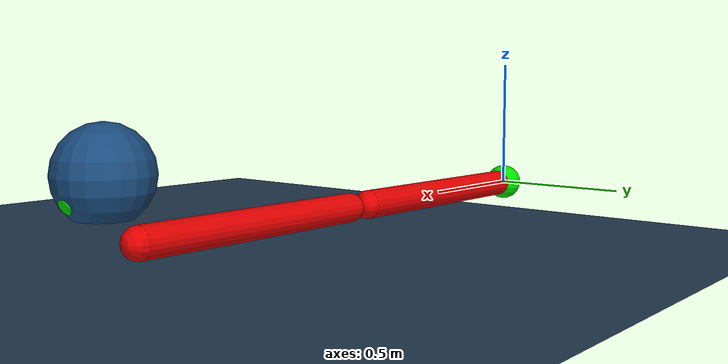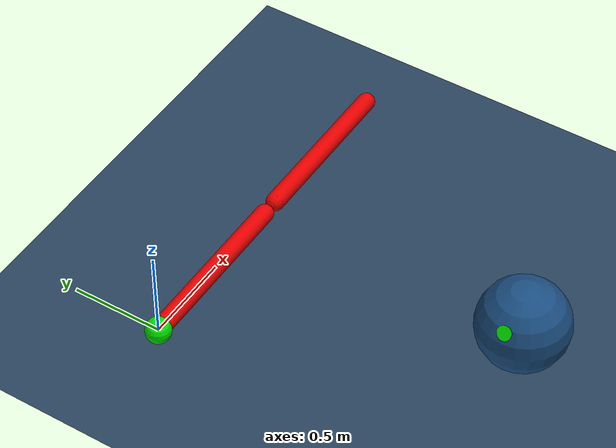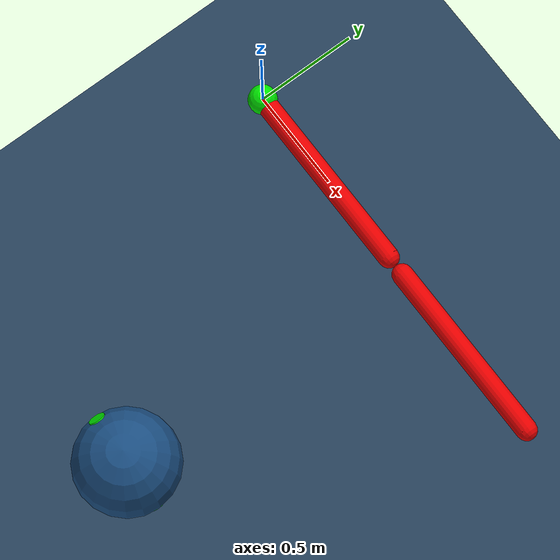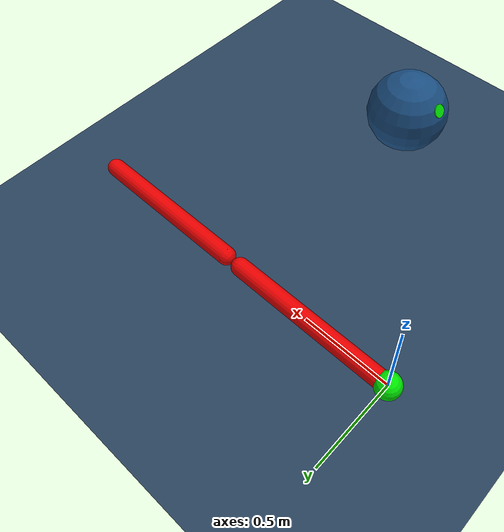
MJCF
<mujoco model="spinner">
  <compiler angle="radian"/>

  <default>
    <default class="visual">
      <geom contype="0" conaffinity="0"/>
    </default>
  </default>

  <!-- Converted from URDF -->
  <worldbody>
    <body name="base">
      <geom class="visual" type="sphere" size="0.07" rgba="0 0.9 0 1"/>
      <body name="finger_one" quat="0.7 0.0 0.7 0.0">
        <inertial pos="0 0 0.5" mass="1" diaginertia="0.0839 0.0839 0.00125"/>
        <joint name="theta_one" pos="0 0 0" axis="1 0 0" damping="0.1"/>
        <geom class="visual" pos="0 0 0.5" type="capsule" size="0.05 0.45" rgba="0.9 0 0 1"/>
        <body name="finger_two" pos="0 0 1">
          <inertial pos="0 0 0.5" mass="1" diaginertia="0.0839 0.0839 0.00125"/>
          <joint name="theta_two" pos="0 0 0" axis="1 0 0" damping="0.1"/>
          <geom pos="0 0 0.5" type="capsule" size="0.05 0.45" rgba="0.9 0 0 1"/>
        </body>
      </body>
    </body>
    <body name="spinner" pos="1.0 -1.5 0">
      <inertial pos="0 0 0" quat="0.7 0 0.7 0" mass="1" diaginertia="0.074 0.054 0.022"/>
      <joint name="theta_three" pos="0 0 0" axis="0 0 1" damping="0.1"/>
      <geom size="0.25" rgba="0.1 0.3 0.5 1"/>
      <geom class="visual" type="cylinder" size="0.04 0.25" rgba="0 0.9 0 1" quat="0.5 0 0.9 0"/>
    </body>
  </worldbody>

  <actuator>
    <motor joint="theta_one" ctrlrange="-1 1" ctrllimited="true"/>
    <motor joint="theta_two" ctrlrange="-1 1" ctrllimited="true"/>
  </actuator>

  <!-- Scene and lighting -->
  <visual>
    <headlight diffuse="0.6 0.6 0.6" ambient="0.3 0.3 0.3" specular="0 0 0"/>
    <rgba haze="0.15 0.25 0.35 1"/>
  </visual>
  <asset>
    <texture type="skybox" builtin="gradient" rgb1="0.3 0.5 0.7" rgb2="0 0 0" width="512" height="3072"/>
    <texture type="2d" name="groundplane" builtin="checker" mark="edge" rgb1="0.2 0.3 0.4" rgb2="0.1 0.2 0.3"
      markrgb="0.8 0.8 0.8" width="300" height="300"/>
    <material name="groundplane" texture="groundplane" texuniform="true" texrepeat="5 5" reflectance="0.2"/>
  </asset>
  <worldbody>
    <light pos="0 0 1"/>
    <geom class="visual" name="floor" pos="0 0 -0.2" size="0 0 .125" type="plane" material="groundplane"/>
  </worldbody>
</mujoco>
